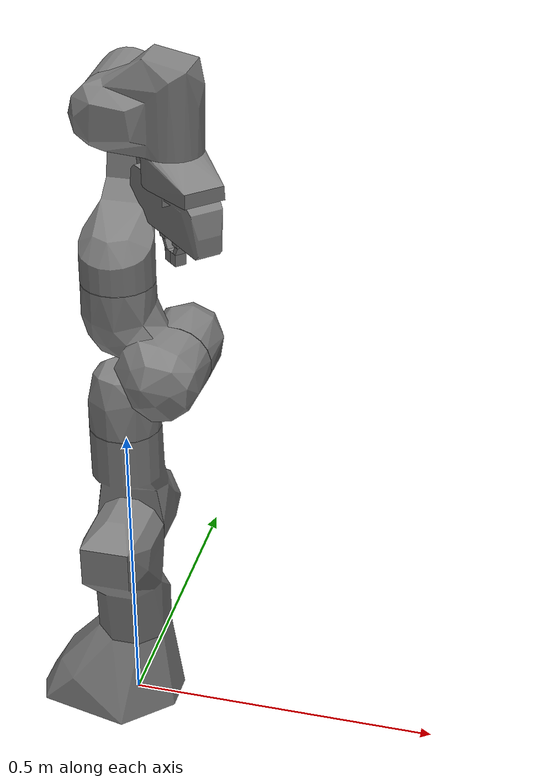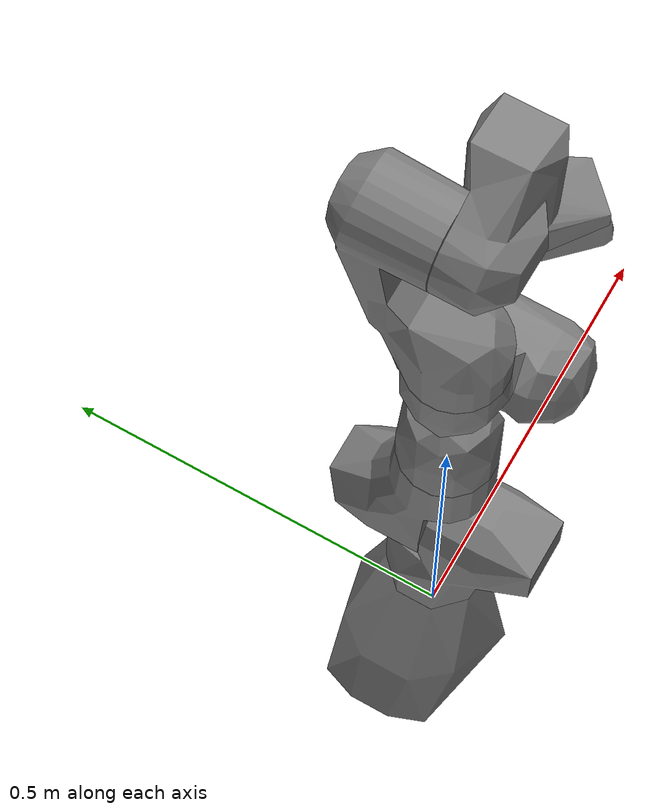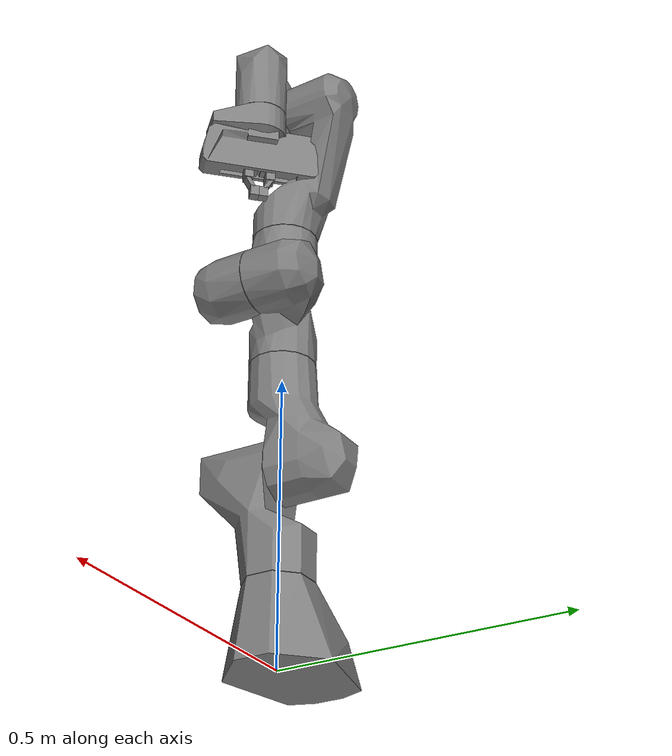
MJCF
<mujoco model="panda">
  <compiler angle="radian" meshdir="../panda_description/meshes/collision"/>

  <asset>
    <mesh name="link0" content_type="model/stl" file="link0.stl"/>
    <mesh name="link1" content_type="model/stl" file="link1.stl"/>
    <mesh name="link2" content_type="model/stl" file="link2.stl"/>
    <mesh name="link3" content_type="model/stl" file="link3.stl"/>
    <mesh name="link4" content_type="model/stl" file="link4.stl"/>
    <mesh name="link5" content_type="model/stl" file="link5.stl"/>
    <mesh name="link6" content_type="model/stl" file="link6.stl"/>
    <mesh name="link7" content_type="model/stl" file="link7.stl"/>
    <mesh name="hand" content_type="model/stl" file="hand.stl"/>
  </asset>

  <worldbody>
    <geom type="mesh" mesh="link0"/>
    <body name="panda_link1" pos="0 0 0.333">
      <inertial pos="0.003875 0.002081 -0.04762" quat="0.711549 0.00634377 -0.0131124 0.702485" mass="4.97068" diaginertia="0.707137 0.703435 0.00852456"/>
      <joint name="panda_joint1" pos="0 0 0" axis="0 0 1" range="-2.8973 2.8973" actuatorfrcrange="-87 87" damping="0.003"/>
      <geom type="mesh" mesh="link1"/>
      <body name="panda_link2" quat="0.707107 -0.707107 0 0">
        <inertial pos="-0.003141 -0.02872 0.003495" quat="-0.168175 0.828366 -0.122878 0.520027" mass="0.646926" diaginertia="0.0310326 0.0283001 0.00273425"/>
        <joint name="panda_joint2" pos="0 0 0" axis="0 0 1" range="-1.7628 1.7628" actuatorfrcrange="-87 87" damping="0.003"/>
        <geom type="mesh" mesh="link2"/>
        <body name="panda_link3" pos="0 -0.316 0" quat="0.707107 0.707107 0 0">
          <inertial pos="0.027518 0.039252 -0.066502" quat="0.662769 -0.00678331 0.252053 0.705096" mass="3.2286" diaginertia="0.0415014 0.0414793 0.00124635"/>
          <joint name="panda_joint3" pos="0 0 0" axis="0 0 1" range="-2.8973 2.8973" actuatorfrcrange="-87 87" damping="0.003"/>
          <geom type="mesh" mesh="link3"/>
          <body name="panda_link4" pos="0.0825 0 0" quat="0.707107 0.707107 0 0">
            <inertial pos="-0.05317 0.104419 0.027454" quat="0.65058 0.529822 -0.0962034 0.535518" mass="3.5879" diaginertia="0.0349596 0.0281483 0.0106201"/>
            <joint name="panda_joint4" pos="0 0 0" axis="0 0 1" range="-3.0718 -0.0698" actuatorfrcrange="-87 87" damping="0.003"/>
            <geom type="mesh" mesh="link4"/>
            <body name="panda_link5" pos="-0.0825 0.384 0" quat="0.707107 -0.707107 0 0">
              <inertial pos="-0.011953 0.041065 -0.038437" quat="0.987313 -0.0121954 0.0719187 -0.141037" mass="1.22595" diaginertia="0.0367625 0.0288531 0.00803437"/>
              <joint name="panda_joint5" pos="0 0 0" axis="0 0 1" range="-2.8973 2.8973" actuatorfrcrange="-12 12" damping="0.003"/>
              <geom type="mesh" mesh="link5"/>
              <body name="panda_link6" quat="0.707107 0.707107 0 0">
                <inertial pos="0.060149 -0.014117 -0.010517" quat="0.101075 0.59332 0.0287227 0.798079" mass="1.66656" diaginertia="0.00584276 0.00431037 0.00159787"/>
                <joint name="panda_joint6" pos="0 0 0" axis="0 0 1" range="-0.0175 3.7525" actuatorfrcrange="-12 12" damping="0.003"/>
                <geom type="mesh" mesh="link6"/>
                <body name="panda_link7" pos="0.088 0 0" quat="0.707107 0.707107 0 0">
                  <inertial pos="0.0535956 -0.00213401 0.045858" quat="0.594329 -0.0303333 0.0970674 0.797766" mass="1.46552" diaginertia="0.0155969 0.0137507 0.00943568"/>
                  <joint name="panda_joint7" pos="0 0 0" axis="0 0 1" range="-2.8973 2.8973" actuatorfrcrange="-12 12" damping="0.003"/>
                  <geom type="mesh" mesh="link7"/>
                  <geom pos="0 0 0.107" quat="0.92388 0 0 -0.382683" type="mesh" mesh="hand"/>
                  <body name="panda_leftfinger" pos="0 0 0.1654" quat="0.92388 0 0 -0.382683">
                    <inertial pos="0 0 0" mass="0.015" diaginertia="2.375e-06 2.375e-06 7.5e-07"/>
                    <joint name="panda_finger_joint1" pos="0 0 0" axis="0 1 0" type="slide" range="0 0.04" actuatorfrcrange="-100 100" damping="0.3"/>
                    <geom size="0.011 0.0075 0.01" pos="0 0.0185 0.011" type="box"/>
                    <geom size="0.011 0.0044 0.0019" pos="0 0.0068 0.0022" type="box"/>
                    <geom size="0.00875 0.0035 0.01175" pos="0 0.0159 0.02835" quat="0.965926 0.258819 0 0" type="box"/>
                    <geom size="0.00875 0.0076 0.00925" pos="0 0.00758 0.04525" type="box"/>
                  </body>
                  <body name="panda_rightfinger" pos="0 0 0.1654" quat="0.92388 0 0 -0.382683">
                    <inertial pos="0 0 0" mass="0.015" diaginertia="2.375e-06 2.375e-06 7.5e-07"/>
                    <joint name="panda_finger_joint2" pos="0 0 0" axis="0 -1 0" type="slide" range="0 0.04" actuatorfrcrange="-100 100" damping="0.3"/>
                    <geom size="0.011 0.0075 0.01" pos="0 -0.0185 0.011" type="box"/>
                    <geom size="0.011 0.0044 0.0019" pos="0 -0.0068 0.0022" type="box"/>
                    <geom size="0.00875 0.0035 0.01175" pos="0 -0.0159 0.02835" quat="0.965926 -0.258819 0 0" type="box"/>
                    <geom size="0.00875 0.0076 0.00925" pos="0 -0.00758 0.04525" type="box"/>
                  </body>
                </body>
              </body>
            </body>
          </body>
        </body>
      </body>
    </body>
  </worldbody>
</mujoco>
